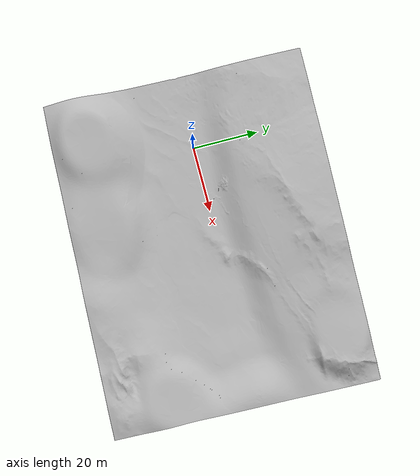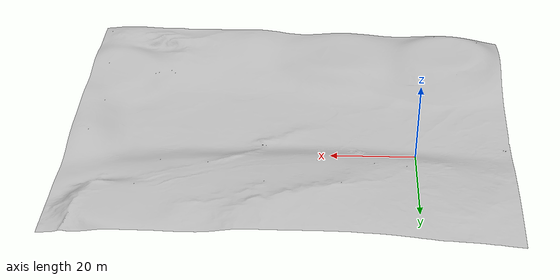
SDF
<sdf version="1.9">
  <model name="my_map">
    <static>true</static>
    <link name="map_link">
      <visual name="map_visual">
        <plugin filename="gz-sim-label-system" name="gz::sim::systems::Label">
          <label>0</label>
        </plugin>
        <geometry>
          <mesh>
            <uri>Terrain_fixed.dae</uri>
          </mesh>
        </geometry>
      </visual>
      <collision name="map_collision">
        <geometry>
          <mesh>
            <uri>Terrain_fixed.dae</uri>
          </mesh>
        </geometry>
      </collision>
    </link>
    <pose>0 0 0 0 0 0</pose>
  </model>
</sdf>
